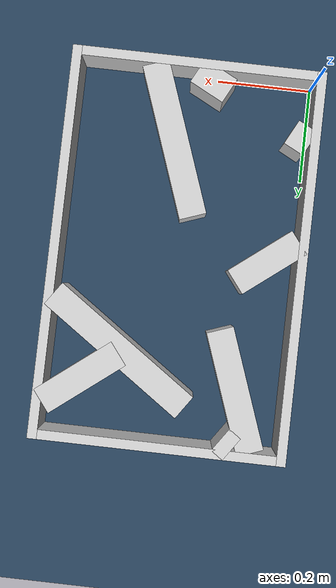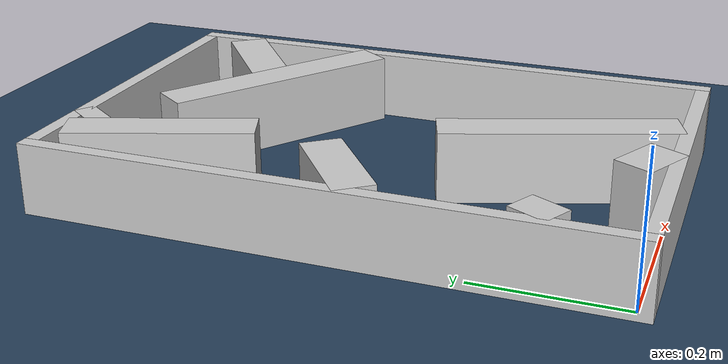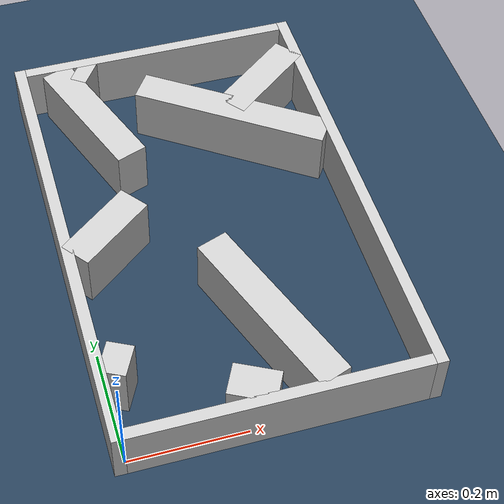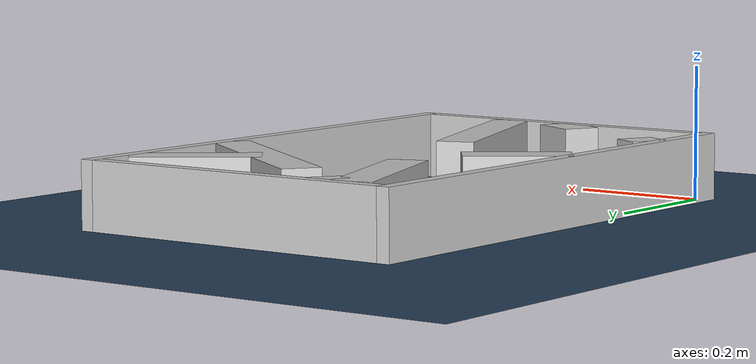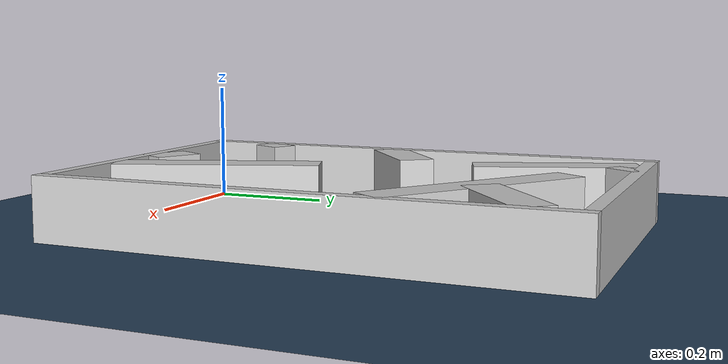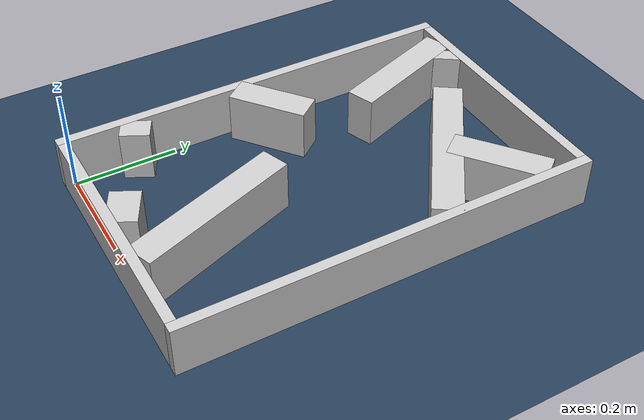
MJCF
<?xml version="1.0" ?>
<mujoco model="generated_real_template">
  <compiler angle="degree"/>
  <option timestep="0.002" integrator="implicitfast" iterations="100" cone="elliptic"/>
  <default>
    <geom density="1"/>
  </default>
  <asset>
    <texture builtin="gradient" height="3072" rgb1="0.3 0.5 0.7" rgb2="0 0 0" type="skybox" width="512"/>
    <texture builtin="checker" height="300" mark="edge" markrgb="0.8 0.8 0.8" name="groundplane" rgb1="0.2 0.3 0.4" rgb2="0.1 0.2 0.3" type="2d" width="300"/>
    <material name="groundplane" reflectance="0.2" texrepeat="5 5" texture="groundplane" texuniform="true"/>
  </asset>
  <worldbody>
    <light dir="0 0 -1" directional="true" pos="0 0 1.5"/>
    <geom name="floor" type="plane" condim="4" friction="0.5 0.005 0.001" material="groundplane" size="0 0 0.05"/>
    <body name="walls">
      <geom name="wall_boundary_left" type="box" condim="4" friction="1.0 0.005 0.0001" rgba="0.8 0.8 0.8 1" pos="-0.010000 0.387500 0.050000" euler="0 0 0.000000" size="0.010000 0.407500 0.050000"/>
      <geom name="wall_boundary_right" type="box" condim="4" friction="1.0 0.005 0.0001" rgba="0.8 0.8 0.8 1" pos="0.500000 0.387500 0.050000" euler="0 0 0.000000" size="0.010000 0.407500 0.050000"/>
      <geom name="wall_boundary_bottom" type="box" condim="4" friction="1.0 0.005 0.0001" rgba="0.8 0.8 0.8 1" pos="0.245000 -0.010000 0.050000" euler="0 0 0.000000" size="0.245000 0.010000 0.050000"/>
      <geom name="wall_boundary_top" type="box" condim="4" friction="1.0 0.005 0.0001" rgba="0.8 0.8 0.8 1" pos="0.245000 0.785000 0.050000" euler="0 0 0.000000" size="0.245000 0.010000 0.050000"/>
      <geom name="wall_inner_1_1" type="box" condim="4" friction="1.0 0.005 0.0001" rgba="0.8 0.8 0.8 1" pos="0.020217 0.121595 0.050000" euler="0 0 -27.162640" size="0.022723 0.028500 0.050000"/>
      <geom name="wall_inner_1_2" type="box" condim="4" friction="1.0 0.005 0.0001" rgba="0.8 0.8 0.8 1" pos="0.211791 0.023297 0.050000" euler="0 0 -27.162640" size="0.039296 0.028500 0.050000"/>
      <geom name="wall_inner_2_1" type="box" condim="4" friction="1.0 0.005 0.0001" rgba="0.8 0.8 0.8 1" pos="0.344149 0.597430 0.050000" euler="0 0 145.264105" size="0.177480 0.028500 0.050000"/>
      <geom name="wall_inner_2_2" type="box" condim="4" friction="1.0 0.005 0.0001" rgba="0.8 0.8 0.8 1" pos="0.105423 0.762953 0.050000" euler="0 0 145.264105" size="0.015138 0.028500 0.050000"/>
      <geom name="wall_inner_3_1" type="box" condim="4" friction="1.0 0.005 0.0001" rgba="0.8 0.8 0.8 1" pos="0.061564 0.385011 0.050000" euler="0 0 37.825154" size="0.077940 0.028500 0.050000"/>
      <geom name="wall_inner_3_2" type="box" condim="4" friction="1.0 0.005 0.0001" rgba="0.8 0.8 0.8 1" pos="0.416831 0.660835 0.050000" euler="0 0 37.825154" size="0.092633 0.028500 0.050000"/>
      <geom name="wall_inner_4_1" type="box" condim="4" friction="1.0 0.005 0.0001" rgba="0.8 0.8 0.8 1" pos="0.279319 0.153927 0.050000" euler="0 0 109.843900" size="0.163644 0.028500 0.050000"/>
      <geom name="wall_inner_4_2" type="box" condim="4" friction="1.0 0.005 0.0001" rgba="0.8 0.8 0.8 1" pos="0.098889 0.653887 0.050000" euler="0 0 109.843900" size="0.128758 0.028500 0.050000"/>
    </body>
  </worldbody>
</mujoco>
